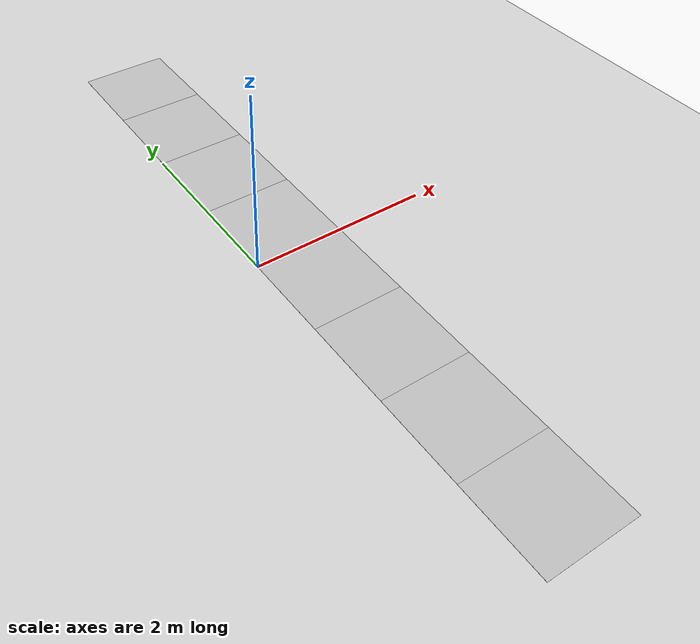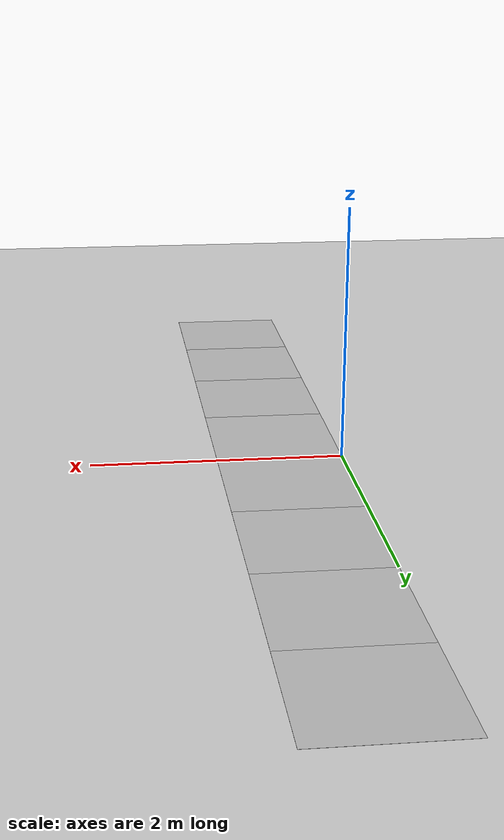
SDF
<?xml version="1.0" ?>
<sdf version="1.5">
  <world name="default">
    <include>
      <uri>model://ground_plane</uri>
      <pose> 0 0 -.0001 0 0 0 </pose>
    </include>
    <include>
      <uri>model://sun</uri>
    </include>
    <include>
      <uri>model://straight_road</uri>
      <pose>.5 .5 0 0 0 0 </pose>
    </include>
    <include>
      <uri>model://straight_road</uri>
      <pose>.5 -.5 0 0 0 0 </pose>
    </include>
    <include>
      <uri>model://straight_road</uri>
      <pose>.5 1.5 0 0 0 0 </pose>
    </include>
    <include>
      <uri>model://straight_road</uri>
      <pose>.5 -1.5 0 0 0 0 </pose>
    </include>
    <include>
      <uri>model://straight_road</uri>
      <pose>.5 -2.5 0 0 0 0 </pose>
    </include>
    <include>
      <uri>model://straight_road</uri>
      <pose>.5 2.5 0 0 0 0 </pose>
    </include>
    <include>
      <uri>model://straight_road</uri>
      <pose>.5 -3.5 0 0 0 0 </pose>
    </include>
    <include>
      <uri>model://straight_road</uri>
      <pose>.5 3.5 0 0 0 0 </pose>
    </include>

  </world>
</sdf>

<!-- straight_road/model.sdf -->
<sdf version="1.4">
	<model name="straight_road">
		<static>true</static>
		<link name="link">
			<collision name="collision">
				<geometry>
					<plane>
						<normal>0 0 1</normal>
						<size>1 1</size>
					</plane>
				</geometry>
				<surface>
					<friction>
						<ode>
							<mu>100</mu>
							<mu2>50</mu2>
						</ode>
					</friction>
				</surface>
			</collision>
			<visual name="visual">
				<cast_shadows>false</cast_shadows>
				<geometry>
					<plane>
						<normal>0 0 1</normal>
						<size>1 1</size>
					</plane>
				</geometry>
				<material>
					<script>
						<uri>model://straight_road/materials/scripts</uri>
						<uri>model://straight_road/materials/textures</uri>
						<name>straight_road/Image</name>
					</script>
				</material>
			</visual>
		</link>
	</model>
</sdf>
